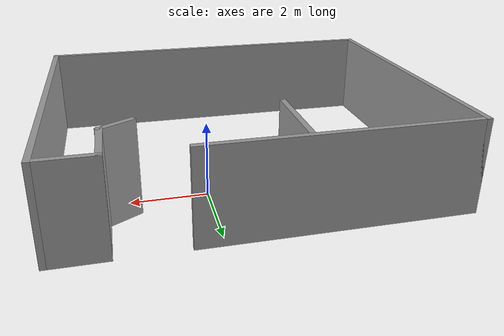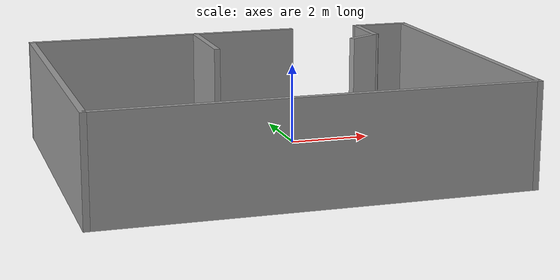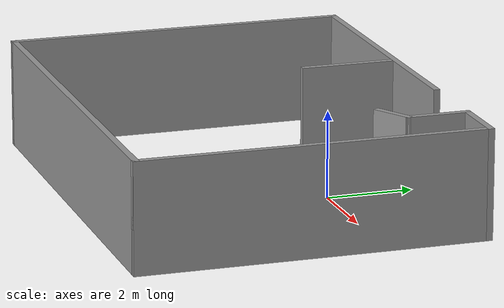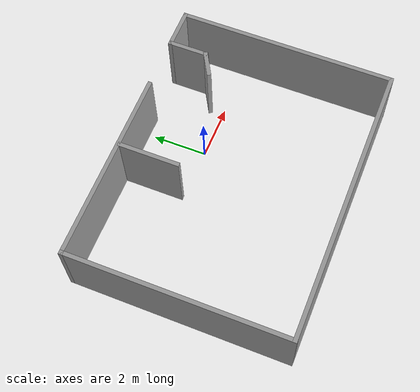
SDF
<?xml version='1.0'?>
<sdf version='1.6'>
  <model name='FirstMapTest'>
    <pose frame=''>-1.14447 -1.63413 0 0 -0 0</pose>
    <link name='Wall_0'>
      <collision name='Wall_0_Collision'>
        <geometry>
          <box>
            <size>7 0.15 2.5</size>
          </box>
        </geometry>
        <pose frame=''>0 0 1.25 0 -0 0</pose>
      </collision>
      <visual name='Wall_0_Visual'>
        <pose frame=''>0 0 1.25 0 -0 0</pose>
        <geometry>
          <box>
            <size>7 0.15 2.5</size>
          </box>
        </geometry>
        <material>
          <script>
            <uri>file://media/materials/scripts/gazebo.material</uri>
            <name>Gazebo/Grey</name>
          </script>
          <ambient>1 1 1 1</ambient>
        </material>
      </visual>
      <pose frame=''>-1.625 3.925 0 0 -0 0</pose>
    </link>
    <link name='Wall_11'>
      <collision name='Wall_11_Collision'>
        <geometry>
          <box>
            <size>2.25 0.15 2.5</size>
          </box>
        </geometry>
        <pose frame=''>0 0 1.25 0 -0 0</pose>
      </collision>
      <visual name='Wall_11_Visual'>
        <pose frame=''>0 0 1.25 0 -0 0</pose>
        <geometry>
          <box>
            <size>2.25 0.15 2.5</size>
          </box>
        </geometry>
        <material>
          <script>
            <uri>file://media/materials/scripts/gazebo.material</uri>
            <name>Gazebo/Grey</name>
          </script>
          <ambient>1 1 1 1</ambient>
        </material>
      </visual>
      <pose frame=''>-0.797481 2.8044 0 0 0 -1.5708</pose>
    </link>
    <link name='Wall_4'>
      <collision name='Wall_4_Collision'>
        <geometry>
          <box>
            <size>8 0.15 2.5</size>
          </box>
        </geometry>
        <pose frame=''>0 0 1.25 0 -0 0</pose>
      </collision>
      <visual name='Wall_4_Visual'>
        <pose frame=''>0 0 1.25 0 -0 0</pose>
        <geometry>
          <box>
            <size>8 0.15 2.5</size>
          </box>
        </geometry>
        <material>
          <script>
            <uri>file://media/materials/scripts/gazebo.material</uri>
            <name>Gazebo/Grey</name>
          </script>
          <ambient>1 1 1 1</ambient>
        </material>
      </visual>
      <pose frame=''>-5.05 0 0 0 0 -1.5708</pose>
    </link>
    <link name='Wall_5'>
      <collision name='Wall_5_Collision'>
        <geometry>
          <box>
            <size>10.25 0.15 2.5</size>
          </box>
        </geometry>
        <pose frame=''>0 0 1.25 0 -0 0</pose>
      </collision>
      <visual name='Wall_5_Visual'>
        <pose frame=''>0 0 1.25 0 -0 0</pose>
        <geometry>
          <box>
            <size>10.25 0.15 2.5</size>
          </box>
        </geometry>
        <material>
          <script>
            <uri>file://media/materials/scripts/gazebo.material</uri>
            <name>Gazebo/Grey</name>
          </script>
          <ambient>1 1 1 1</ambient>
        </material>
      </visual>
      <pose frame=''>0 -3.925 0 0 -0 0</pose>
    </link>
    <link name='Wall_6'>
      <collision name='Wall_6_Collision'>
        <geometry>
          <box>
            <size>8 0.15 2.5</size>
          </box>
        </geometry>
        <pose frame=''>0 0 1.25 0 -0 0</pose>
      </collision>
      <visual name='Wall_6_Visual'>
        <pose frame=''>0 0 1.25 0 -0 0</pose>
        <geometry>
          <box>
            <size>8 0.15 2.5</size>
          </box>
        </geometry>
        <material>
          <script>
            <uri>file://media/materials/scripts/gazebo.material</uri>
            <name>Gazebo/Grey</name>
          </script>
          <ambient>1 1 1 1</ambient>
        </material>
      </visual>
      <pose frame=''>5.05 0 0 0 -0 1.5708</pose>
    </link>
    <link name='Wall_7'>
      <collision name='Wall_7_Collision'>
        <geometry>
          <box>
            <size>1.5 0.15 2.5</size>
          </box>
        </geometry>
        <pose frame=''>0 0 1.25 0 -0 0</pose>
      </collision>
      <visual name='Wall_7_Visual'>
        <pose frame=''>0 0 1.25 0 -0 0</pose>
        <geometry>
          <box>
            <size>1.5 0.15 2.5</size>
          </box>
        </geometry>
        <material>
          <script>
            <uri>file://media/materials/scripts/gazebo.material</uri>
            <name>Gazebo/Grey</name>
          </script>
          <ambient>1 1 1 1</ambient>
        </material>
      </visual>
      <pose frame=''>4.375 3.925 0 0 -0 3.14159</pose>
    </link>
    <link name='Wall_8'>
      <collision name='Wall_8_Collision'>
        <geometry>
          <box>
            <size>1.5 0.15 2.5</size>
          </box>
        </geometry>
        <pose frame=''>0 0 1.25 0 -0 0</pose>
      </collision>
      <visual name='Wall_8_Visual'>
        <pose frame=''>0 0 1.25 0 -0 0</pose>
        <geometry>
          <box>
            <size>1.5 0.15 2.5</size>
          </box>
        </geometry>
        <material>
          <script>
            <uri>file://media/materials/scripts/gazebo.material</uri>
            <name>Gazebo/Grey</name>
          </script>
          <ambient>1 1 1 1</ambient>
        </material>
      </visual>
      <pose frame=''>3.7 3.25 0 0 0 -1.5708</pose>
    </link>
    <link name='Wall_9'>
      <collision name='Wall_9_Collision'>
        <geometry>
          <box>
            <size>1 0.15 2.5</size>
          </box>
        </geometry>
        <pose frame=''>0 0 1.25 0 -0 0</pose>
      </collision>
      <visual name='Wall_9_Visual'>
        <pose frame=''>0 0 1.25 0 -0 0</pose>
        <geometry>
          <box>
            <size>1 0.15 2.5</size>
          </box>
        </geometry>
        <material>
          <script>
            <uri>file://media/materials/scripts/gazebo.material</uri>
            <name>Gazebo/Grey</name>
          </script>
          <ambient>1 1 1 1</ambient>
        </material>
      </visual>
      <pose frame=''>3.33194 2.3625 0 0 0 -2.61799</pose>
    </link>
    <static>1</static>
  </model>
</sdf>
